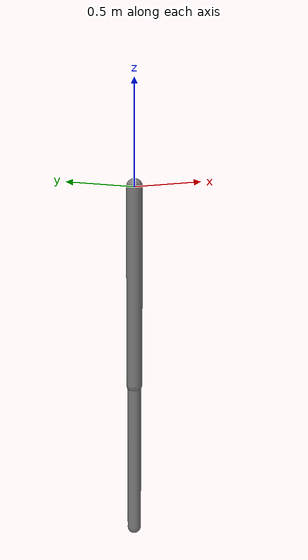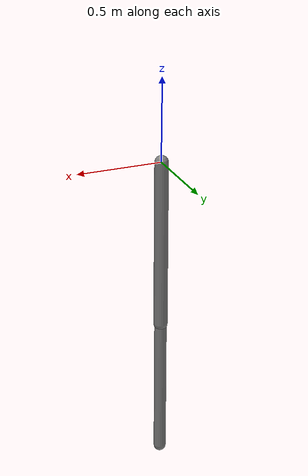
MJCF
<mujoco model="two_link_verification">
  <compiler angle="radian"/>
  <option timestep="0.01" gravity="0 0 -9.81"/>
  <worldbody>
    <body name="upper">
      <inertial pos="0 0 -0.5" mass="1" diaginertia="0.1 0.1 0.01"/>
      <joint name="shoulder" type="hinge" axis="0 1 0" damping="0.04" limited="true" range="-1 1"/>
      <geom name="upper_rod" type="capsule" size="0.04 0.5" pos="0 0 -0.5"/>
      <body name="lower" pos="0 0 -1">
        <inertial pos="0 0 -0.4" mass="0.7" diaginertia="0.06 0.06 0.008"/>
        <joint name="elbow" type="hinge" axis="0 1 0" damping="0.03" limited="true" range="-1 1"/>
        <geom name="lower_rod" type="capsule" size="0.035 0.4" pos="0 0 -0.4"/>
      </body>
    </body>
  </worldbody>
</mujoco>
